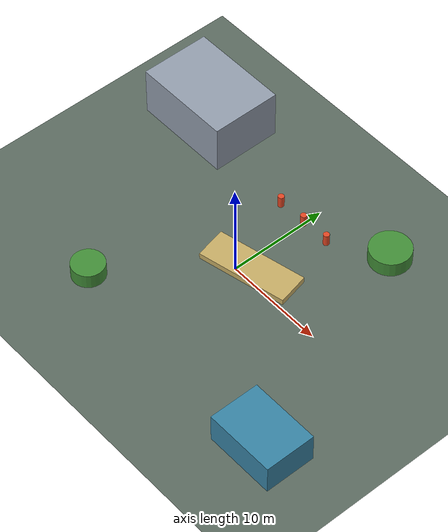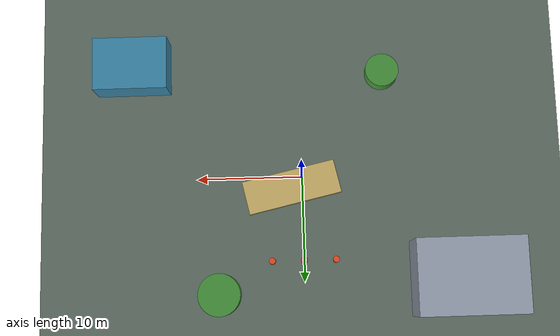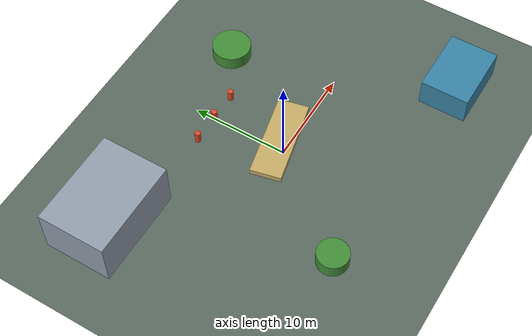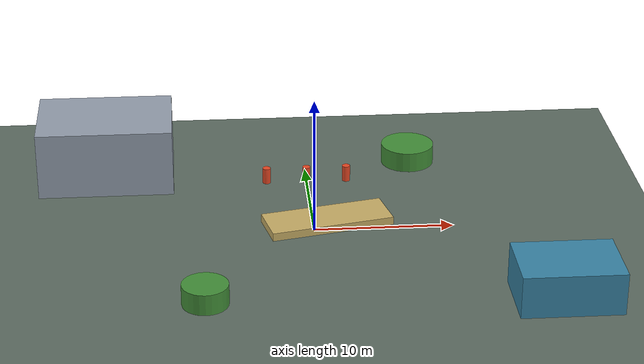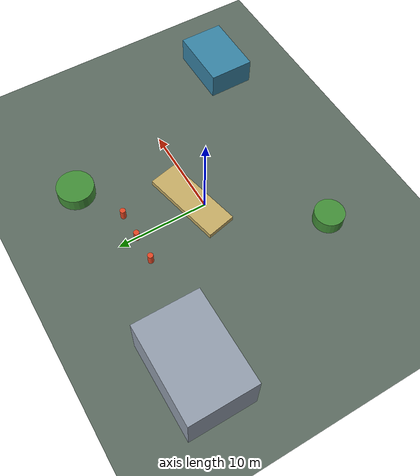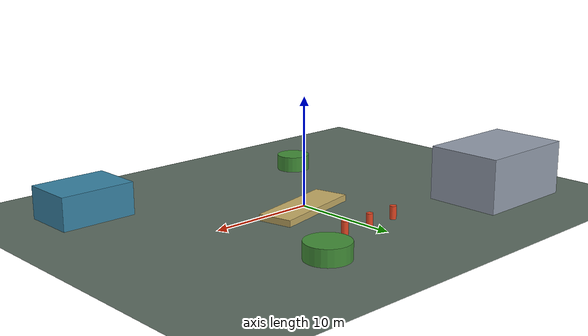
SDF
<?xml version="1.0"?>
<sdf version="1.8">
  <world name="smartclean_smoke">
    <gravity>0 0 -9.8</gravity>
    <magnetic_field>5.64e-6 2.29e-5 -4.24e-5</magnetic_field>

    <physics name="1ms" type="ignored">
      <max_step_size>0.001</max_step_size>
      <real_time_factor>1.0</real_time_factor>
    </physics>

    <scene>
      <ambient>0.35 0.35 0.35 1</ambient>
      <background>0.65 0.78 0.90 1</background>
      <shadows>true</shadows>
    </scene>

    <light name="sun" type="directional">
      <cast_shadows>true</cast_shadows>
      <pose>0 0 20 0 0 0</pose>
      <diffuse>0.9 0.9 0.85 1</diffuse>
      <specular>0.2 0.2 0.2 1</specular>
      <attenuation>
        <range>1000</range>
        <constant>0.9</constant>
        <linear>0.01</linear>
        <quadratic>0.001</quadratic>
      </attenuation>
      <direction>-0.45 0.25 -0.86</direction>
    </light>

    <model name="smartclean_ground">
      <static>true</static>
      <link name="ground_link">
        <collision name="ground_collision">
          <geometry>
            <plane>
              <normal>0 0 1</normal>
              <size>50 40</size>
            </plane>
          </geometry>
        </collision>
        <visual name="ground_visual">
          <geometry>
            <plane>
              <normal>0 0 1</normal>
              <size>50 40</size>
            </plane>
          </geometry>
          <material>
            <ambient>0.30 0.34 0.32 1</ambient>
            <diffuse>0.36 0.42 0.38 1</diffuse>
            <specular>0.05 0.05 0.05 1</specular>
          </material>
        </visual>
      </link>
    </model>

    <model name="service_building">
      <static>true</static>
      <pose>-15 10 2.5 0 0 0</pose>
      <link name="building_link">
        <collision name="building_collision">
          <geometry><box><size>10 7 5</size></box></geometry>
        </collision>
        <visual name="building_visual">
          <geometry><box><size>10 7 5</size></box></geometry>
          <material>
            <ambient>0.45 0.48 0.52 1</ambient>
            <diffuse>0.58 0.62 0.68 1</diffuse>
          </material>
        </visual>
      </link>
    </model>

    <model name="waste_station">
      <static>true</static>
      <pose>16 -11 1.5 0 0 0</pose>
      <link name="station_link">
        <collision name="station_collision">
          <geometry><box><size>7 5 3</size></box></geometry>
        </collision>
        <visual name="station_visual">
          <geometry><box><size>7 5 3</size></box></geometry>
          <material>
            <ambient>0.18 0.36 0.46 1</ambient>
            <diffuse>0.22 0.52 0.65 1</diffuse>
          </material>
        </visual>
      </link>
    </model>

    <model name="pedestrian_island">
      <static>true</static>
      <pose>1 1 0.30 0 0 0.22</pose>
      <link name="island_link">
        <collision name="island_collision">
          <geometry><box><size>9 3.2 0.6</size></box></geometry>
        </collision>
        <visual name="island_visual">
          <geometry><box><size>9 3.2 0.6</size></box></geometry>
          <material>
            <ambient>0.64 0.55 0.34 1</ambient>
            <diffuse>0.78 0.68 0.40 1</diffuse>
          </material>
        </visual>
      </link>
    </model>

    <model name="planter_north">
      <static>true</static>
      <pose>8 11 0.75 0 0 0</pose>
      <link name="planter_link">
        <collision name="planter_collision">
          <geometry><cylinder><radius>2.0</radius><length>1.5</length></cylinder></geometry>
        </collision>
        <visual name="planter_visual">
          <geometry><cylinder><radius>2.0</radius><length>1.5</length></cylinder></geometry>
          <material>
            <ambient>0.20 0.42 0.18 1</ambient>
            <diffuse>0.26 0.56 0.22 1</diffuse>
          </material>
        </visual>
      </link>
    </model>

    <model name="planter_south">
      <static>true</static>
      <pose>-8 -10 0.75 0 0 0</pose>
      <link name="planter_link">
        <collision name="planter_collision">
          <geometry><cylinder><radius>1.6</radius><length>1.5</length></cylinder></geometry>
        </collision>
        <visual name="planter_visual">
          <geometry><cylinder><radius>1.6</radius><length>1.5</length></cylinder></geometry>
          <material>
            <ambient>0.20 0.42 0.18 1</ambient>
            <diffuse>0.26 0.56 0.22 1</diffuse>
          </material>
        </visual>
      </link>
    </model>

    <model name="bollards">
      <static>true</static>
      <link name="bollard_west">
        <pose>-3 8 0.6 0 0 0</pose>
        <collision name="collision">
          <geometry><cylinder><radius>0.3</radius><length>1.2</length></cylinder></geometry>
        </collision>
        <visual name="visual">
          <geometry><cylinder><radius>0.3</radius><length>1.2</length></cylinder></geometry>
          <material><ambient>0.75 0.20 0.12 1</ambient><diffuse>0.90 0.28 0.14 1</diffuse></material>
        </visual>
      </link>
      <link name="bollard_center">
        <pose>0 8 0.6 0 0 0</pose>
        <collision name="collision">
          <geometry><cylinder><radius>0.3</radius><length>1.2</length></cylinder></geometry>
        </collision>
        <visual name="visual">
          <geometry><cylinder><radius>0.3</radius><length>1.2</length></cylinder></geometry>
          <material><ambient>0.75 0.20 0.12 1</ambient><diffuse>0.90 0.28 0.14 1</diffuse></material>
        </visual>
      </link>
      <link name="bollard_east">
        <pose>3 8 0.6 0 0 0</pose>
        <collision name="collision">
          <geometry><cylinder><radius>0.3</radius><length>1.2</length></cylinder></geometry>
        </collision>
        <visual name="visual">
          <geometry><cylinder><radius>0.3</radius><length>1.2</length></cylinder></geometry>
          <material><ambient>0.75 0.20 0.12 1</ambient><diffuse>0.90 0.28 0.14 1</diffuse></material>
        </visual>
      </link>
    </model>
  </world>
</sdf>
